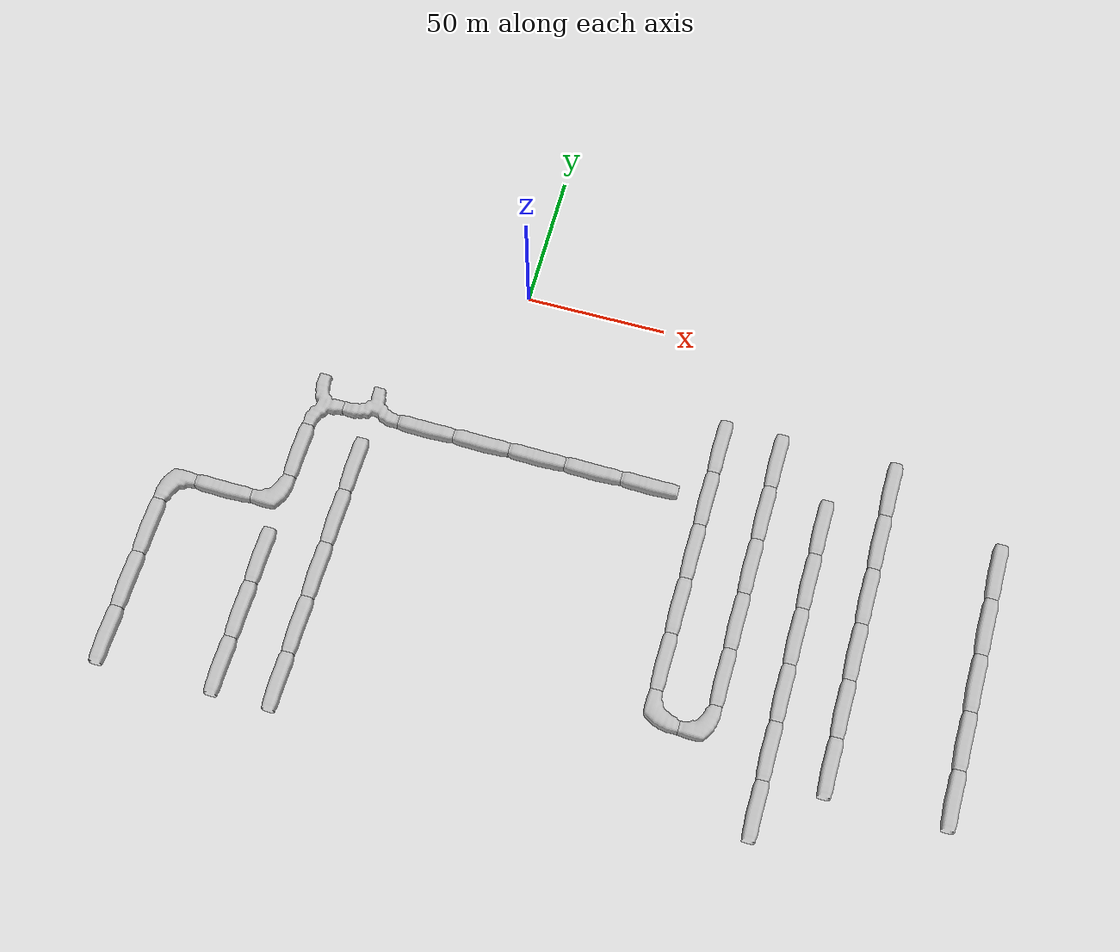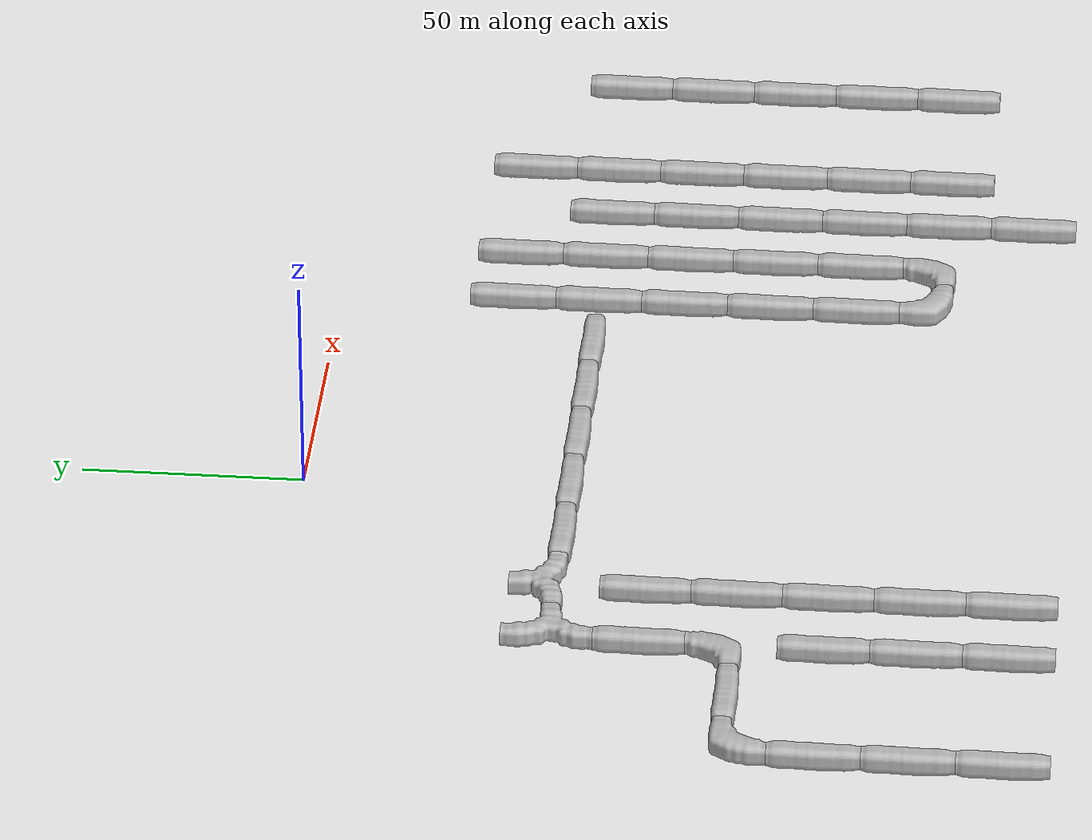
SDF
<sdf version="1.6">
 <world name="cave_16000_0">
  <include>
   <static>true</static>
   <name>cave_4_-2</name>
   <pose>80 -40 0 0 0 0.0</pose>
   <uri>model://cave_straight_20m</uri>
  </include>
  <include>
   <static>true</static>
   <name>cave_4_-3</name>
   <pose>80 -60 0 0 0 0.0</pose>
   <uri>model://cave_straight_20m</uri>
  </include>
  <include>
   <static>true</static>
   <name>cave_4_-4</name>
   <pose>80 -80 0 0 0 0.0</pose>
   <uri>model://cave_straight_20m</uri>
  </include>
  <include>
   <static>true</static>
   <name>cave_4_-5</name>
   <pose>80 -100 0 0 0 0.0</pose>
   <uri>model://cave_straight_20m</uri>
  </include>
  <include>
   <static>true</static>
   <name>cave_4_-6</name>
   <pose>80 -120 0 0 0 0.0</pose>
   <uri>model://cave_straight_20m</uri>
  </include>
  <include>
   <static>true</static>
   <name>cave_4_-7</name>
   <pose>80 -140 0 0 0 0.0</pose>
   <uri>model://cave_L_20m</uri>
  </include>
  <include>
   <static>true</static>
   <name>cave_5_-7</name>
   <pose>100 -140 0 0 0 1.5707963267948966</pose>
   <uri>model://cave_L_20m</uri>
  </include>
  <include>
   <static>true</static>
   <name>cave_5_-6</name>
   <pose>100 -120 0 0 0 0.0</pose>
   <uri>model://cave_straight_20m</uri>
  </include>
  <include>
   <static>true</static>
   <name>cave_5_-5</name>
   <pose>100 -100 0 0 0 0.0</pose>
   <uri>model://cave_straight_20m</uri>
  </include>
  <include>
   <static>true</static>
   <name>cave_5_-4</name>
   <pose>100 -80 0 0 0 0.0</pose>
   <uri>model://cave_straight_20m</uri>
  </include>
  <include>
   <static>true</static>
   <name>cave_5_-3</name>
   <pose>100 -60 0 0 0 0.0</pose>
   <uri>model://cave_straight_20m</uri>
  </include>
  <include>
   <static>true</static>
   <name>cave_5_-2</name>
   <pose>100 -40 0 0 0 0.0</pose>
   <uri>model://cave_straight_20m</uri>
  </include>
  <include>
   <static>true</static>
   <name>cave_7_-2</name>
   <pose>140 -40 0 0 0 0.0</pose>
   <uri>model://cave_straight_20m</uri>
  </include>
  <include>
   <static>true</static>
   <name>cave_7_-3</name>
   <pose>140 -60 0 0 0 0.0</pose>
   <uri>model://cave_straight_20m</uri>
  </include>
  <include>
   <static>true</static>
   <name>cave_7_-4</name>
   <pose>140 -80 0 0 0 0.0</pose>
   <uri>model://cave_straight_20m</uri>
  </include>
  <include>
   <static>true</static>
   <name>cave_7_-5</name>
   <pose>140 -100 0 0 0 0.0</pose>
   <uri>model://cave_straight_20m</uri>
  </include>
  <include>
   <static>true</static>
   <name>cave_7_-6</name>
   <pose>140 -120 0 0 0 0.0</pose>
   <uri>model://cave_straight_20m</uri>
  </include>
  <include>
   <static>true</static>
   <name>cave_7_-7</name>
   <pose>140 -140 0 0 0 0.0</pose>
   <uri>model://cave_straight_20m</uri>
  </include>
  <include>
   <static>true</static>
   <name>cave_9_-7</name>
   <pose>180 -140 0 0 0 0.0</pose>
   <uri>model://cave_straight_20m</uri>
  </include>
  <include>
   <static>true</static>
   <name>cave_9_-6</name>
   <pose>180 -120 0 0 0 0.0</pose>
   <uri>model://cave_straight_20m</uri>
  </include>
  <include>
   <static>true</static>
   <name>cave_9_-5</name>
   <pose>180 -100 0 0 0 0.0</pose>
   <uri>model://cave_straight_20m</uri>
  </include>
  <include>
   <static>true</static>
   <name>cave_9_-4</name>
   <pose>180 -80 0 0 0 0.0</pose>
   <uri>model://cave_straight_20m</uri>
  </include>
  <include>
   <static>true</static>
   <name>cave_9_-3</name>
   <pose>180 -60 0 0 0 0.0</pose>
   <uri>model://cave_straight_20m</uri>
  </include>
  <include>
   <static>true</static>
   <name>cave_6_-3</name>
   <pose>120 -60 0 0 0 0.0</pose>
   <uri>model://cave_straight_20m</uri>
  </include>
  <include>
   <static>true</static>
   <name>cave_6_-4</name>
   <pose>120 -80 0 0 0 0.0</pose>
   <uri>model://cave_straight_20m</uri>
  </include>
  <include>
   <static>true</static>
   <name>cave_6_-5</name>
   <pose>120 -100 0 0 0 0.0</pose>
   <uri>model://cave_straight_20m</uri>
  </include>
  <include>
   <static>true</static>
   <name>cave_6_-6</name>
   <pose>120 -120 0 0 0 0.0</pose>
   <uri>model://cave_straight_20m</uri>
  </include>
  <include>
   <static>true</static>
   <name>cave_6_-7</name>
   <pose>120 -140 0 0 0 0.0</pose>
   <uri>model://cave_straight_20m</uri>
  </include>
  <include>
   <static>true</static>
   <name>cave_6_-8</name>
   <pose>120 -160 0 0 0 0.0</pose>
   <uri>model://cave_straight_20m</uri>
  </include>
  <include>
   <static>true</static>
   <name>cave_-3_-8</name>
   <pose>-60 -160 0 0 0 0.0</pose>
   <uri>model://cave_straight_20m</uri>
  </include>
  <include>
   <static>true</static>
   <name>cave_-3_-7</name>
   <pose>-60 -140 0 0 0 0.0</pose>
   <uri>model://cave_straight_20m</uri>
  </include>
  <include>
   <static>true</static>
   <name>cave_-3_-6</name>
   <pose>-60 -120 0 0 0 0.0</pose>
   <uri>model://cave_straight_20m</uri>
  </include>
  <include>
   <static>true</static>
   <name>cave_-2_-8</name>
   <pose>-40 -160 0 0 0 0.0</pose>
   <uri>model://cave_straight_20m</uri>
  </include>
  <include>
   <static>true</static>
   <name>cave_-2_-7</name>
   <pose>-40 -140 0 0 0 0.0</pose>
   <uri>model://cave_straight_20m</uri>
  </include>
  <include>
   <static>true</static>
   <name>cave_-2_-6</name>
   <pose>-40 -120 0 0 0 0.0</pose>
   <uri>model://cave_straight_20m</uri>
  </include>
  <include>
   <static>true</static>
   <name>cave_-2_-5</name>
   <pose>-40 -100 0 0 0 0.0</pose>
   <uri>model://cave_straight_20m</uri>
  </include>
  <include>
   <static>true</static>
   <name>cave_-2_-4</name>
   <pose>-40 -80 0 0 0 0.0</pose>
   <uri>model://cave_straight_20m</uri>
  </include>
  <include>
   <static>true</static>
   <name>cave_-2_-3</name>
   <pose>-40 -60 0 0 0 0.0</pose>
   <uri>model://cave_3way_20m</uri>
  </include>
  <include>
   <static>true</static>
   <name>cave_-1_-3</name>
   <pose>-20 -60 0 0 0 1.5707963267948966</pose>
   <uri>model://cave_straight_20m</uri>
  </include>
  <include>
   <static>true</static>
   <name>cave_0_-3</name>
   <pose>0 -60 0 0 0 1.5707963267948966</pose>
   <uri>model://cave_straight_20m</uri>
  </include>
  <include>
   <static>true</static>
   <name>cave_1_-3</name>
   <pose>20 -60 0 0 0 1.5707963267948966</pose>
   <uri>model://cave_straight_20m</uri>
  </include>
  <include>
   <static>true</static>
   <name>cave_2_-3</name>
   <pose>40 -60 0 0 0 1.5707963267948966</pose>
   <uri>model://cave_straight_20m</uri>
  </include>
  <include>
   <static>true</static>
   <name>cave_3_-3</name>
   <pose>60 -60 0 0 0 1.5707963267948966</pose>
   <uri>model://cave_straight_20m</uri>
  </include>
  <include>
   <static>true</static>
   <name>cave_-3_-3</name>
   <pose>-60 -60 0 0 0 -1.5707963267948966</pose>
   <uri>model://cave_3way_20m</uri>
  </include>
  <include>
   <static>true</static>
   <name>cave_-3_-4</name>
   <pose>-60 -80 0 0 0 0.0</pose>
   <uri>model://cave_straight_20m</uri>
  </include>
  <include>
   <static>true</static>
   <name>cave_-3_-5</name>
   <pose>-60 -100 0 0 0 1.5707963267948966</pose>
   <uri>model://cave_L_20m</uri>
  </include>
  <include>
   <static>true</static>
   <name>cave_-4_-5</name>
   <pose>-80 -100 0 0 0 1.5707963267948966</pose>
   <uri>model://cave_straight_20m</uri>
  </include>
  <include>
   <static>true</static>
   <name>cave_-5_-5</name>
   <pose>-100 -100 0 0 0 -1.5707963267948966</pose>
   <uri>model://cave_L_20m</uri>
  </include>
  <include>
   <static>true</static>
   <name>cave_-5_-6</name>
   <pose>-100 -120 0 0 0 0.0</pose>
   <uri>model://cave_straight_20m</uri>
  </include>
  <include>
   <static>true</static>
   <name>cave_-5_-7</name>
   <pose>-100 -140 0 0 0 0.0</pose>
   <uri>model://cave_straight_20m</uri>
  </include>
  <include>
   <static>true</static>
   <name>cave_-5_-8</name>
   <pose>-100 -160 0 0 0 0.0</pose>
   <uri>model://cave_straight_20m</uri>
  </include>
 </world>
</sdf>
